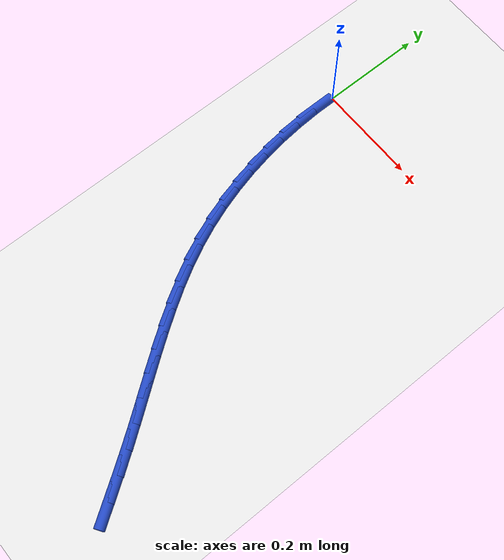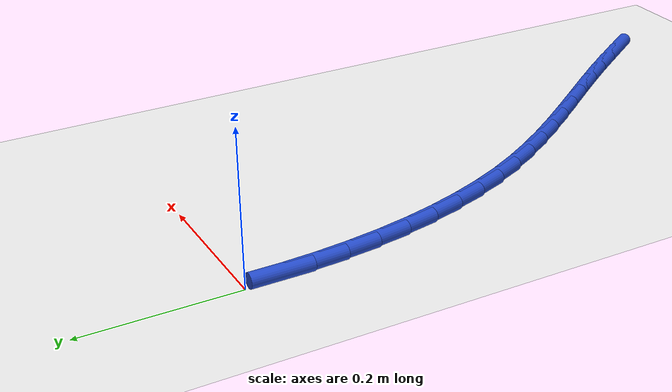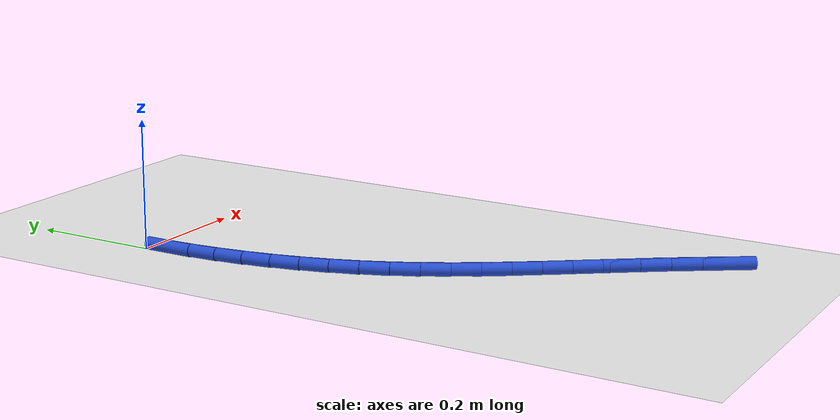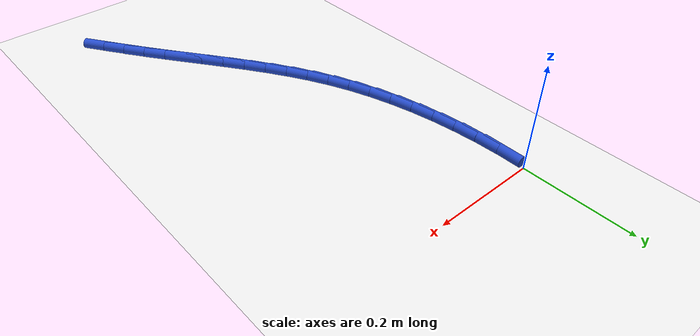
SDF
<sdf version="1.6">
 <world name="default">
  <model name="ground_plane">
   <static>1</static>
   <link name="link">
    <collision name="collision">
     <geometry><plane><normal>0 0 1</normal><size>100 100</size></plane></geometry>
     <surface><friction><ode><mu>100</mu><mu2>50</mu2></ode></friction></surface>
    </collision>
    <visual name="visual">
     <cast_shadows>0</cast_shadows>
     <geometry><plane><normal>0 0 1</normal><size>100 100</size></plane></geometry>
     <material>
      <script><uri>file://media/materials/scripts/gazebo.material</uri><name>Gazebo/WhiteGlow</name></script>
     </material>
    </visual>
   </link>
  </model>
  <model name="line">
   <link name="link_140">
    <pose>0.3535437382694495 -0.7949884407059352 0.01 0 1.57 -0.9729665807247351</pose>
    <collision name="collision">
     <geometry><cylinder><radius>0.01</radius><length>0.08</length></cylinder></geometry>
    </collision>
    <visual name="visual">
     <material>
      <script><name>Gazebo/Blue</name><uri>file://media/materials/scripts/gazebo.material</uri></script>
     </material>
     <geometry><cylinder><radius>0.01</radius><length>0.08</length></cylinder></geometry>
    </visual>
   </link>
   <link name="link_141">
    <pose>0.32772372540609057 -0.7570711129939428 0.01 0 1.57 -0.9644951679864204</pose>
    <collision name="collision">
     <geometry><cylinder><radius>0.01</radius><length>0.08</length></cylinder></geometry>
    </collision>
    <visual name="visual">
     <material>
      <script><name>Gazebo/Blue</name><uri>file://media/materials/scripts/gazebo.material</uri></script>
     </material>
     <geometry><cylinder><radius>0.01</radius><length>0.08</length></cylinder></geometry>
    </visual>
   </link>
   <link name="link_142">
    <pose>0.3016835995827806 -0.7195183316561964 0.01 0 1.57 -0.9485893676449197</pose>
    <collision name="collision">
     <geometry><cylinder><radius>0.01</radius><length>0.08</length></cylinder></geometry>
    </collision>
    <visual name="visual">
     <material>
      <script><name>Gazebo/Blue</name><uri>file://media/materials/scripts/gazebo.material</uri></script>
     </material>
     <geometry><cylinder><radius>0.01</radius><length>0.08</length></cylinder></geometry>
    </visual>
   </link>
   <link name="link_143">
    <pose>0.2752199140875891 -0.6826220868852484 0.01 0 1.57 -0.9349344033909319</pose>
    <collision name="collision">
     <geometry><cylinder><radius>0.01</radius><length>0.08</length></cylinder></geometry>
    </collision>
    <visual name="visual">
     <material>
      <script><name>Gazebo/Blue</name><uri>file://media/materials/scripts/gazebo.material</uri></script>
     </material>
     <geometry><cylinder><radius>0.01</radius><length>0.08</length></cylinder></geometry>
    </visual>
   </link>
   <link name="link_144">
    <pose>0.24844592175003766 -0.646349429708055 0.01 0 1.57 -0.9300255507147276</pose>
    <collision name="collision">
     <geometry><cylinder><radius>0.01</radius><length>0.08</length></cylinder></geometry>
    </collision>
    <visual name="visual">
     <material>
      <script><name>Gazebo/Blue</name><uri>file://media/materials/scripts/gazebo.material</uri></script>
     </material>
     <geometry><cylinder><radius>0.01</radius><length>0.08</length></cylinder></geometry>
    </visual>
   </link>
   <link name="link_145">
    <pose>0.22167964410511165 -0.6104573149449644 0.01 0 1.57 -0.9341582867892114</pose>
    <collision name="collision">
     <geometry><cylinder><radius>0.01</radius><length>0.08</length></cylinder></geometry>
    </collision>
    <visual name="visual">
     <material>
      <script><name>Gazebo/Blue</name><uri>file://media/materials/scripts/gazebo.material</uri></script>
     </material>
     <geometry><cylinder><radius>0.01</radius><length>0.08</length></cylinder></geometry>
    </visual>
   </link>
   <link name="link_146">
    <pose>0.19524253561230245 -0.5746991751768551 0.01 0 1.57 -0.9475161929504852</pose>
    <collision name="collision">
     <geometry><cylinder><radius>0.01</radius><length>0.08</length></cylinder></geometry>
    </collision>
    <visual name="visual">
     <material>
      <script><name>Gazebo/Blue</name><uri>file://media/materials/scripts/gazebo.material</uri></script>
     </material>
     <geometry><cylinder><radius>0.01</radius><length>0.08</length></cylinder></geometry>
    </visual>
   </link>
   <link name="link_147">
    <pose>0.1694560507311029 -0.5388284429846075 0.01 0 1.57 -0.9702662376526683</pose>
    <collision name="collision">
     <geometry><cylinder><radius>0.01</radius><length>0.08</length></cylinder></geometry>
    </collision>
    <visual name="visual">
     <material>
      <script><name>Gazebo/Blue</name><uri>file://media/materials/scripts/gazebo.material</uri></script>
     </material>
     <geometry><cylinder><radius>0.01</radius><length>0.08</length></cylinder></geometry>
    </visual>
   </link>
   <link name="link_148">
    <pose>0.14464164392100406 -0.5025985509491 0.01 0 1.57 -1.002522316902671</pose>
    <collision name="collision">
     <geometry><cylinder><radius>0.01</radius><length>0.08</length></cylinder></geometry>
    </collision>
    <visual name="visual">
     <material>
      <script><name>Gazebo/Blue</name><uri>file://media/materials/scripts/gazebo.material</uri></script>
     </material>
     <geometry><cylinder><radius>0.01</radius><length>0.08</length></cylinder></geometry>
    </visual>
   </link>
   <link name="link_149">
    <pose>0.12112076964149798 -0.465762931651212 0.01 0 1.57 -1.0442819106959513</pose>
    <collision name="collision">
     <geometry><cylinder><radius>0.01</radius><length>0.08</length></cylinder></geometry>
    </collision>
    <visual name="visual">
     <material>
      <script><name>Gazebo/Blue</name><uri>file://media/materials/scripts/gazebo.material</uri></script>
     </material>
     <geometry><cylinder><radius>0.01</radius><length>0.08</length></cylinder></geometry>
    </visual>
   </link>
   <link name="link_150">
    <pose>0.09921488235207632 -0.4280750176718225 0.01 0 1.57 -1.0953379056267438</pose>
    <collision name="collision">
     <geometry><cylinder><radius>0.01</radius><length>0.08</length></cylinder></geometry>
    </collision>
    <visual name="visual">
     <material>
      <script><name>Gazebo/Blue</name><uri>file://media/materials/scripts/gazebo.material</uri></script>
     </material>
     <geometry><cylinder><radius>0.01</radius><length>0.08</length></cylinder></geometry>
    </visual>
   </link>
   <link name="link_151">
    <pose>0.07924543651223061 -0.3892882415918099 0.01 0 1.57 -1.154095471624331</pose>
    <collision name="collision">
     <geometry><cylinder><radius>0.01</radius><length>0.08</length></cylinder></geometry>
    </collision>
    <visual name="visual">
     <material>
      <script><name>Gazebo/Blue</name><uri>file://media/materials/scripts/gazebo.material</uri></script>
     </material>
     <geometry><cylinder><radius>0.01</radius><length>0.08</length></cylinder></geometry>
    </visual>
   </link>
   <link name="link_152">
    <pose>0.06150059785408114 -0.3491978982990668 0.01 0 1.57 -1.2129028719767143</pose>
    <collision name="collision">
     <geometry><cylinder><radius>0.01</radius><length>0.08</length></cylinder></geometry>
    </collision>
    <visual name="visual">
     <material>
      <script><name>Gazebo/Blue</name><uri>file://media/materials/scripts/gazebo.material</uri></script>
     </material>
     <geometry><cylinder><radius>0.01</radius><length>0.08</length></cylinder></geometry>
    </visual>
   </link>
   <link name="link_153">
    <pose>0.04604694403342646 -0.307877941218876 0.01 0 1.57 -1.269023136102204</pose>
    <collision name="collision">
     <geometry><cylinder><radius>0.01</radius><length>0.08</length></cylinder></geometry>
    </collision>
    <visual name="visual">
     <material>
      <script><name>Gazebo/Blue</name><uri>file://media/materials/scripts/gazebo.material</uri></script>
     </material>
     <geometry><cylinder><radius>0.01</radius><length>0.08</length></cylinder></geometry>
    </visual>
   </link>
   <link name="link_154">
    <pose>0.03286055246321143 -0.2655161325415323 0.01 0 1.57 -1.3227833682704728</pose>
    <collision name="collision">
     <geometry><cylinder><radius>0.01</radius><length>0.08</length></cylinder></geometry>
    </collision>
    <visual name="visual">
     <material>
      <script><name>Gazebo/Blue</name><uri>file://media/materials/scripts/gazebo.material</uri></script>
     </material>
     <geometry><cylinder><radius>0.01</radius><length>0.08</length></cylinder></geometry>
    </visual>
   </link>
   <link name="link_155">
    <pose>0.02191723188805832 -0.22230057232172729 0.01 0 1.57 -1.3745361145625108</pose>
    <collision name="collision">
     <geometry><cylinder><radius>0.01</radius><length>0.08</length></cylinder></geometry>
    </collision>
    <visual name="visual">
     <material>
      <script><name>Gazebo/Blue</name><uri>file://media/materials/scripts/gazebo.material</uri></script>
     </material>
     <geometry><cylinder><radius>0.01</radius><length>0.08</length></cylinder></geometry>
    </visual>
   </link>
   <link name="link_156">
    <pose>0.013192791052589223 -0.1784193606141522 0.01 0 1.57 -1.4246427414397937</pose>
    <collision name="collision">
     <geometry><cylinder><radius>0.01</radius><length>0.08</length></cylinder></geometry>
    </collision>
    <visual name="visual">
     <material>
      <script><name>Gazebo/Blue</name><uri>file://media/materials/scripts/gazebo.material</uri></script>
     </material>
     <geometry><cylinder><radius>0.01</radius><length>0.08</length></cylinder></geometry>
    </visual>
   </link>
   <link name="link_157">
    <pose>0.006663038701426713 -0.13406059747350052 0.01 0 1.57 -1.4734692102998497</pose>
    <collision name="collision">
     <geometry><cylinder><radius>0.01</radius><length>0.08</length></cylinder></geometry>
    </collision>
    <visual name="visual">
     <material>
      <script><name>Gazebo/Blue</name><uri>file://media/materials/scripts/gazebo.material</uri></script>
     </material>
     <geometry><cylinder><radius>0.01</radius><length>0.08</length></cylinder></geometry>
    </visual>
   </link>
   <link name="link_158">
    <pose>0.0023037835791928536 -0.08941238295446333 0.01 0 1.57 -1.5213847216297633</pose>
    <collision name="collision">
     <geometry><cylinder><radius>0.01</radius><length>0.08</length></cylinder></geometry>
    </collision>
    <visual name="visual">
     <material>
      <script><name>Gazebo/Blue</name><uri>file://media/materials/scripts/gazebo.material</uri></script>
     </material>
     <geometry><cylinder><radius>0.01</radius><length>0.08</length></cylinder></geometry>
    </visual>
   </link>
   <link name="link_159">
    <pose>9.083443050988179e-05 -0.04466281711173259 0.01 0 1.57 -1.5687625476661786</pose>
    <collision name="collision">
     <geometry><cylinder><radius>0.01</radius><length>0.08</length></cylinder></geometry>
    </collision>
    <visual name="visual">
     <material>
      <script><name>Gazebo/Blue</name><uri>file://media/materials/scripts/gazebo.material</uri></script>
     </material>
     <geometry><cylinder><radius>0.01</radius><length>0.08</length></cylinder></geometry>
    </visual>
   </link>
  </model>
 </world>
</sdf>
